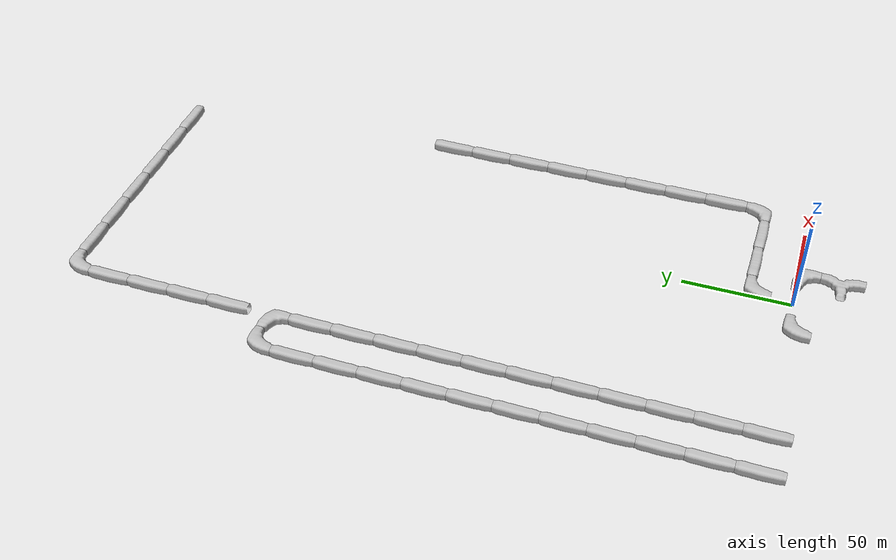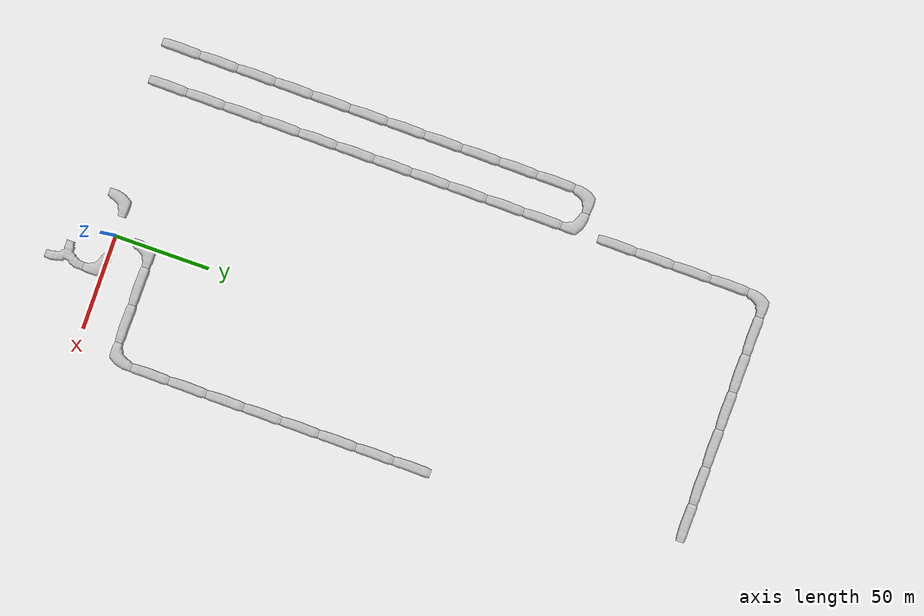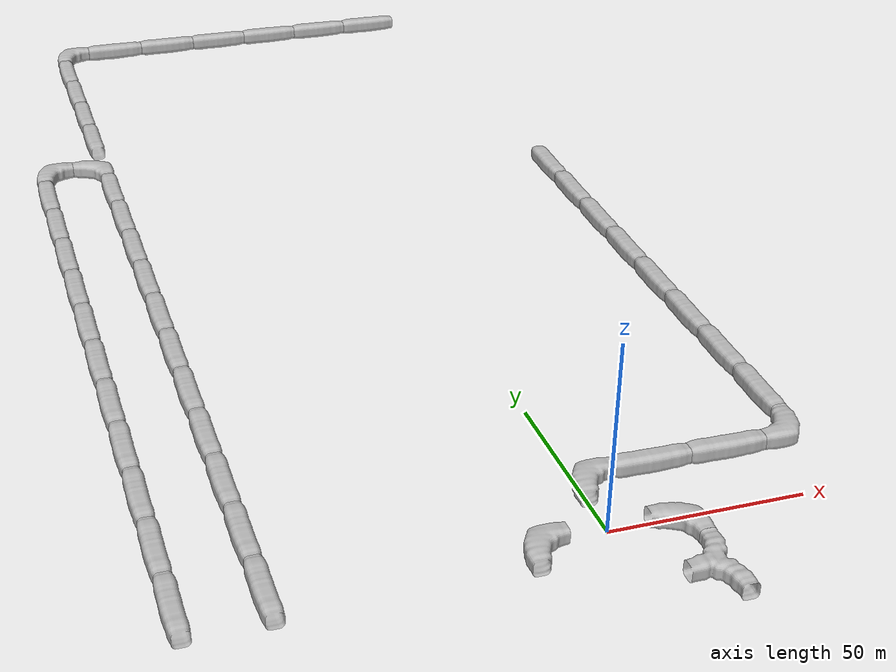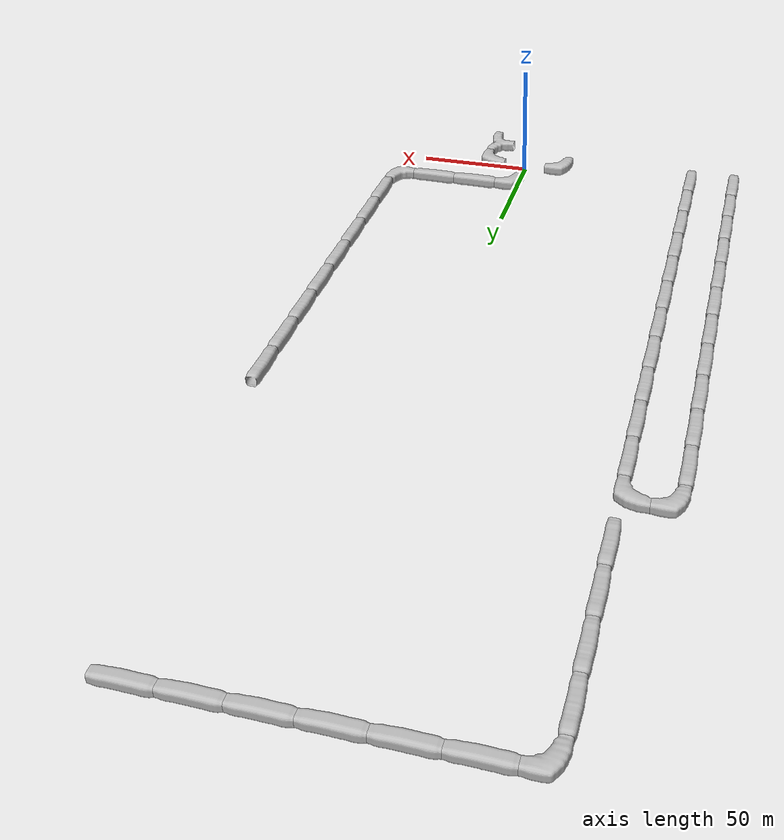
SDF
<sdf version="1.6">
 <world name="cave_4000_32">
  <include>
   <static>true</static>
   <name>cave_1_0</name>
   <pose>20 0 0 0 0 3.141592653589793</pose>
   <uri>model://cave_L_20m</uri>
  </include>
  <include>
   <static>true</static>
   <name>cave_1_-1</name>
   <pose>20 -20 0 0 0 1.5707963267948966</pose>
   <uri>model://cave_3way_20m</uri>
  </include>
  <include>
   <static>true</static>
   <name>cave_-1_0</name>
   <pose>-20 0 0 0 0 -1.5707963267948966</pose>
   <uri>model://cave_L_20m</uri>
  </include>
  <include>
   <static>true</static>
   <name>cave_-5_0</name>
   <pose>-100 0 0 0 0 0.0</pose>
   <uri>model://cave_straight_20m</uri>
  </include>
  <include>
   <static>true</static>
   <name>cave_-5_1</name>
   <pose>-100 20 0 0 0 0.0</pose>
   <uri>model://cave_straight_20m</uri>
  </include>
  <include>
   <static>true</static>
   <name>cave_-5_2</name>
   <pose>-100 40 0 0 0 0.0</pose>
   <uri>model://cave_straight_20m</uri>
  </include>
  <include>
   <static>true</static>
   <name>cave_-5_3</name>
   <pose>-100 60 0 0 0 0.0</pose>
   <uri>model://cave_straight_20m</uri>
  </include>
  <include>
   <static>true</static>
   <name>cave_-5_4</name>
   <pose>-100 80 0 0 0 0.0</pose>
   <uri>model://cave_straight_20m</uri>
  </include>
  <include>
   <static>true</static>
   <name>cave_-5_5</name>
   <pose>-100 100 0 0 0 0.0</pose>
   <uri>model://cave_straight_20m</uri>
  </include>
  <include>
   <static>true</static>
   <name>cave_-5_6</name>
   <pose>-100 120 0 0 0 0.0</pose>
   <uri>model://cave_straight_20m</uri>
  </include>
  <include>
   <static>true</static>
   <name>cave_-5_7</name>
   <pose>-100 140 0 0 0 0.0</pose>
   <uri>model://cave_straight_20m</uri>
  </include>
  <include>
   <static>true</static>
   <name>cave_-5_8</name>
   <pose>-100 160 0 0 0 0.0</pose>
   <uri>model://cave_straight_20m</uri>
  </include>
  <include>
   <static>true</static>
   <name>cave_-5_9</name>
   <pose>-100 180 0 0 0 0.0</pose>
   <uri>model://cave_straight_20m</uri>
  </include>
  <include>
   <static>true</static>
   <name>cave_-5_10</name>
   <pose>-100 200 0 0 0 0.0</pose>
   <uri>model://cave_straight_20m</uri>
  </include>
  <include>
   <static>true</static>
   <name>cave_-5_11</name>
   <pose>-100 220 0 0 0 -1.5707963267948966</pose>
   <uri>model://cave_L_20m</uri>
  </include>
  <include>
   <static>true</static>
   <name>cave_-4_11</name>
   <pose>-80 220 0 0 0 3.141592653589793</pose>
   <uri>model://cave_L_20m</uri>
  </include>
  <include>
   <static>true</static>
   <name>cave_-4_10</name>
   <pose>-80 200 0 0 0 0.0</pose>
   <uri>model://cave_straight_20m</uri>
  </include>
  <include>
   <static>true</static>
   <name>cave_-4_9</name>
   <pose>-80 180 0 0 0 0.0</pose>
   <uri>model://cave_straight_20m</uri>
  </include>
  <include>
   <static>true</static>
   <name>cave_-4_8</name>
   <pose>-80 160 0 0 0 0.0</pose>
   <uri>model://cave_straight_20m</uri>
  </include>
  <include>
   <static>true</static>
   <name>cave_-4_7</name>
   <pose>-80 140 0 0 0 0.0</pose>
   <uri>model://cave_straight_20m</uri>
  </include>
  <include>
   <static>true</static>
   <name>cave_-4_6</name>
   <pose>-80 120 0 0 0 0.0</pose>
   <uri>model://cave_straight_20m</uri>
  </include>
  <include>
   <static>true</static>
   <name>cave_-4_5</name>
   <pose>-80 100 0 0 0 0.0</pose>
   <uri>model://cave_straight_20m</uri>
  </include>
  <include>
   <static>true</static>
   <name>cave_-4_4</name>
   <pose>-80 80 0 0 0 0.0</pose>
   <uri>model://cave_straight_20m</uri>
  </include>
  <include>
   <static>true</static>
   <name>cave_-4_3</name>
   <pose>-80 60 0 0 0 0.0</pose>
   <uri>model://cave_straight_20m</uri>
  </include>
  <include>
   <static>true</static>
   <name>cave_-4_2</name>
   <pose>-80 40 0 0 0 0.0</pose>
   <uri>model://cave_straight_20m</uri>
  </include>
  <include>
   <static>true</static>
   <name>cave_-4_1</name>
   <pose>-80 20 0 0 0 0.0</pose>
   <uri>model://cave_straight_20m</uri>
  </include>
  <include>
   <static>true</static>
   <name>cave_-4_0</name>
   <pose>-80 0 0 0 0 0.0</pose>
   <uri>model://cave_straight_20m</uri>
  </include>
  <include>
   <static>true</static>
   <name>cave_0_1</name>
   <pose>0 20 0 0 0 -1.5707963267948966</pose>
   <uri>model://cave_L_20m</uri>
  </include>
  <include>
   <static>true</static>
   <name>cave_1_1</name>
   <pose>20 20 0 0 0 1.5707963267948966</pose>
   <uri>model://cave_straight_20m</uri>
  </include>
  <include>
   <static>true</static>
   <name>cave_2_1</name>
   <pose>40 20 0 0 0 1.5707963267948966</pose>
   <uri>model://cave_straight_20m</uri>
  </include>
  <include>
   <static>true</static>
   <name>cave_3_1</name>
   <pose>60 20 0 0 0 1.5707963267948966</pose>
   <uri>model://cave_L_20m</uri>
  </include>
  <include>
   <static>true</static>
   <name>cave_3_2</name>
   <pose>60 40 0 0 0 0.0</pose>
   <uri>model://cave_straight_20m</uri>
  </include>
  <include>
   <static>true</static>
   <name>cave_3_3</name>
   <pose>60 60 0 0 0 0.0</pose>
   <uri>model://cave_straight_20m</uri>
  </include>
  <include>
   <static>true</static>
   <name>cave_3_4</name>
   <pose>60 80 0 0 0 0.0</pose>
   <uri>model://cave_straight_20m</uri>
  </include>
  <include>
   <static>true</static>
   <name>cave_3_5</name>
   <pose>60 100 0 0 0 0.0</pose>
   <uri>model://cave_straight_20m</uri>
  </include>
  <include>
   <static>true</static>
   <name>cave_3_6</name>
   <pose>60 120 0 0 0 0.0</pose>
   <uri>model://cave_straight_20m</uri>
  </include>
  <include>
   <static>true</static>
   <name>cave_3_7</name>
   <pose>60 140 0 0 0 0.0</pose>
   <uri>model://cave_straight_20m</uri>
  </include>
  <include>
   <static>true</static>
   <name>cave_3_8</name>
   <pose>60 160 0 0 0 0.0</pose>
   <uri>model://cave_straight_20m</uri>
  </include>
  <include>
   <static>true</static>
   <name>cave_3_9</name>
   <pose>60 180 0 0 0 0.0</pose>
   <uri>model://cave_straight_20m</uri>
  </include>
  <include>
   <static>true</static>
   <name>cave_2_16</name>
   <pose>40 320 0 0 0 1.5707963267948966</pose>
   <uri>model://cave_straight_20m</uri>
  </include>
  <include>
   <static>true</static>
   <name>cave_1_16</name>
   <pose>20 320 0 0 0 1.5707963267948966</pose>
   <uri>model://cave_straight_20m</uri>
  </include>
  <include>
   <static>true</static>
   <name>cave_0_16</name>
   <pose>0 320 0 0 0 1.5707963267948966</pose>
   <uri>model://cave_straight_20m</uri>
  </include>
  <include>
   <static>true</static>
   <name>cave_-1_16</name>
   <pose>-20 320 0 0 0 1.5707963267948966</pose>
   <uri>model://cave_straight_20m</uri>
  </include>
  <include>
   <static>true</static>
   <name>cave_-2_16</name>
   <pose>-40 320 0 0 0 1.5707963267948966</pose>
   <uri>model://cave_straight_20m</uri>
  </include>
  <include>
   <static>true</static>
   <name>cave_-3_16</name>
   <pose>-60 320 0 0 0 1.5707963267948966</pose>
   <uri>model://cave_straight_20m</uri>
  </include>
  <include>
   <static>true</static>
   <name>cave_-4_16</name>
   <pose>-80 320 0 0 0 -1.5707963267948966</pose>
   <uri>model://cave_L_20m</uri>
  </include>
  <include>
   <static>true</static>
   <name>cave_-4_15</name>
   <pose>-80 300 0 0 0 0.0</pose>
   <uri>model://cave_straight_20m</uri>
  </include>
  <include>
   <static>true</static>
   <name>cave_-4_14</name>
   <pose>-80 280 0 0 0 0.0</pose>
   <uri>model://cave_straight_20m</uri>
  </include>
  <include>
   <static>true</static>
   <name>cave_-4_13</name>
   <pose>-80 260 0 0 0 0.0</pose>
   <uri>model://cave_straight_20m</uri>
  </include>
  <include>
   <static>true</static>
   <name>cave_-4_12</name>
   <pose>-80 240 0 0 0 0.0</pose>
   <uri>model://cave_straight_20m</uri>
  </include>
 </world>
</sdf>
